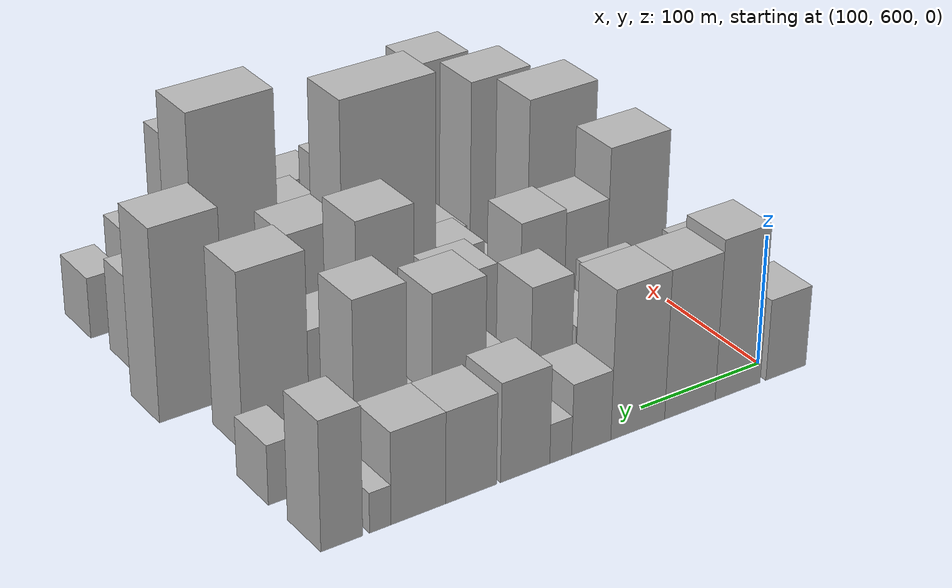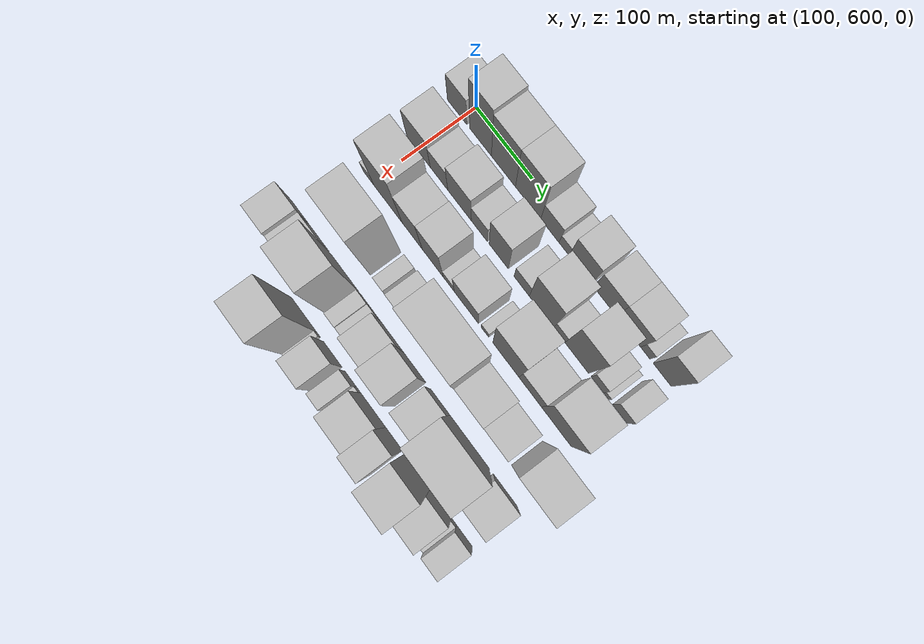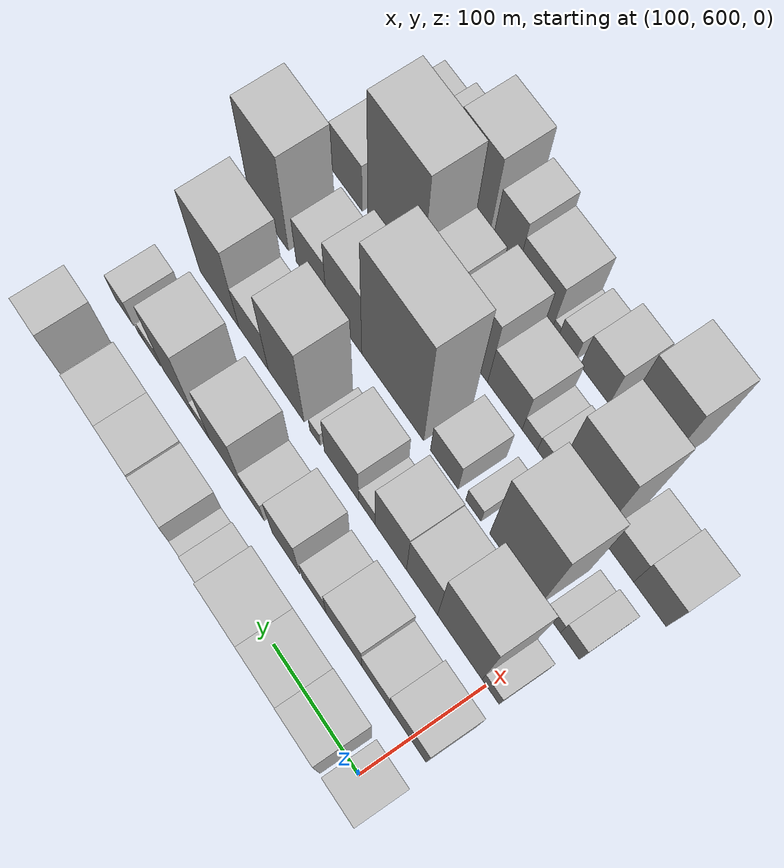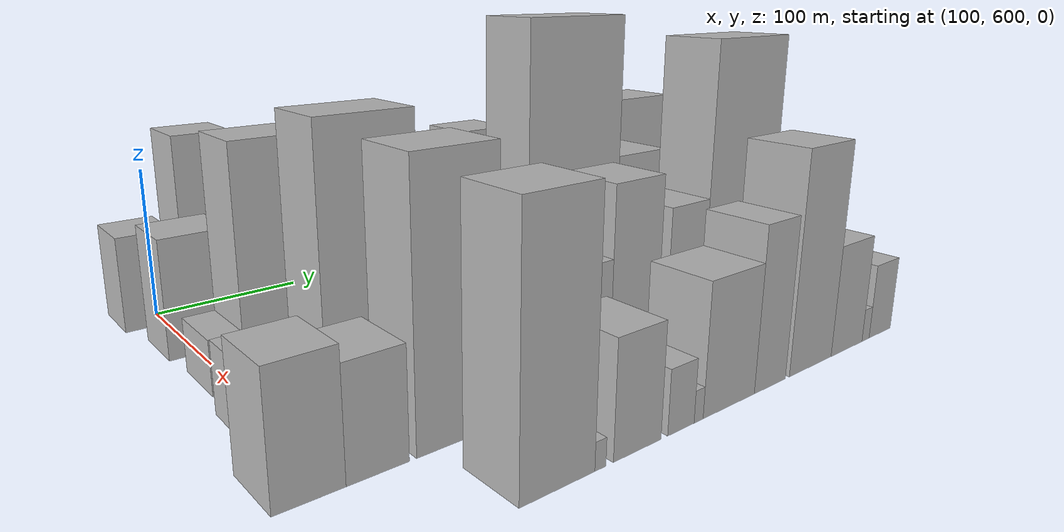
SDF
<sdf version="1.6">
 <world name="default">
  <model name="building_41">
   <static>1</static>
   <pose>100.0000 591.9832 0 0.000000 0.000000 0.000000</pose>
   <link name="link">
    <pose>0 0 31.50 0 0 0</pose>
    <collision name="collision"><geometry><box><size>40.0000 35.1292 63.0000</size></box></geometry></collision>
    <visual name="visual">
     <cast_shadows>0</cast_shadows>
     <geometry><box><size>40.0000 35.1292 63.0000</size></box></geometry>
     <material>
      <script>
       <uri>model://HANNAS_wall/materials/scripts</uri>
       <uri>model://HANNAS_wall/materials/textures</uri>
       <name>vrc/HANNAS_wall</name>
      </script>
     </material>
    </visual>
   </link>
  </model>
  <model name="building_42">
   <static>1</static>
   <pose>100.0000 634.0240 0 0.000000 0.000000 0.000000</pose>
   <link name="link">
    <pose>0 0 61.50 0 0 0</pose>
    <collision name="collision"><geometry><box><size>40.0000 38.9524 123.0000</size></box></geometry></collision>
    <visual name="visual">
     <cast_shadows>0</cast_shadows>
     <geometry><box><size>40.0000 38.9524 123.0000</size></box></geometry>
     <material>
      <script>
       <uri>model://HANNAS_wall/materials/scripts</uri>
       <uri>model://HANNAS_wall/materials/textures</uri>
       <name>vrc/HANNAS_wall</name>
      </script>
     </material>
    </visual>
   </link>
  </model>
  <model name="building_43">
   <static>1</static>
   <pose>100.0000 674.8013 0 0.000000 0.000000 0.000000</pose>
   <link name="link">
    <pose>0 0 57.00 0 0 0</pose>
    <collision name="collision"><geometry><box><size>40.0000 42.6022 114.0000</size></box></geometry></collision>
    <visual name="visual">
     <cast_shadows>0</cast_shadows>
     <geometry><box><size>40.0000 42.6022 114.0000</size></box></geometry>
     <material>
      <script>
       <uri>model://HANNAS_wall/materials/scripts</uri>
       <uri>model://HANNAS_wall/materials/textures</uri>
       <name>vrc/HANNAS_wall</name>
      </script>
     </material>
    </visual>
   </link>
  </model>
  <model name="building_44">
   <static>1</static>
   <pose>100.0000 718.3085 0 0.000000 0.000000 0.000000</pose>
   <link name="link">
    <pose>0 0 57.00 0 0 0</pose>
    <collision name="collision"><geometry><box><size>40.0000 44.4120 114.0000</size></box></geometry></collision>
    <visual name="visual">
     <cast_shadows>0</cast_shadows>
     <geometry><box><size>40.0000 44.4120 114.0000</size></box></geometry>
     <material>
      <script>
       <uri>model://HANNAS_wall/materials/scripts</uri>
       <uri>model://HANNAS_wall/materials/textures</uri>
       <name>vrc/HANNAS_wall</name>
      </script>
     </material>
    </visual>
   </link>
  </model>
  <model name="building_45">
   <static>1</static>
   <pose>100.0000 756.2886 0 0.000000 0.000000 0.000000</pose>
   <link name="link">
    <pose>0 0 27.00 0 0 0</pose>
    <collision name="collision"><geometry><box><size>40.0000 31.5482 54.0000</size></box></geometry></collision>
    <visual name="visual">
     <cast_shadows>0</cast_shadows>
     <geometry><box><size>40.0000 31.5482 54.0000</size></box></geometry>
     <material>
      <script>
       <uri>model://HANNAS_wall/materials/scripts</uri>
       <uri>model://HANNAS_wall/materials/textures</uri>
       <name>vrc/HANNAS_wall</name>
      </script>
     </material>
    </visual>
   </link>
  </model>
  <model name="building_46">
   <static>1</static>
   <pose>100.0000 780.7602 0 0.000000 0.000000 0.000000</pose>
   <link name="link">
    <pose>0 0 15.00 0 0 0</pose>
    <collision name="collision"><geometry><box><size>40.0000 17.3951 30.0000</size></box></geometry></collision>
    <visual name="visual">
     <cast_shadows>0</cast_shadows>
     <geometry><box><size>40.0000 17.3951 30.0000</size></box></geometry>
     <material>
      <script>
       <uri>model://HANNAS_wall/materials/scripts</uri>
       <uri>model://HANNAS_wall/materials/textures</uri>
       <name>vrc/HANNAS_wall</name>
      </script>
     </material>
    </visual>
   </link>
  </model>
  <model name="building_47">
   <static>1</static>
   <pose>100.0000 808.7402 0 0.000000 0.000000 0.000000</pose>
   <link name="link">
    <pose>0 0 37.50 0 0 0</pose>
    <collision name="collision"><geometry><box><size>40.0000 38.5649 75.0000</size></box></geometry></collision>
    <visual name="visual">
     <cast_shadows>0</cast_shadows>
     <geometry><box><size>40.0000 38.5649 75.0000</size></box></geometry>
     <material>
      <script>
       <uri>model://HANNAS_wall/materials/scripts</uri>
       <uri>model://HANNAS_wall/materials/textures</uri>
       <name>vrc/HANNAS_wall</name>
      </script>
     </material>
    </visual>
   </link>
  </model>
  <model name="building_48">
   <static>1</static>
   <pose>100.0000 850.4560 0 0.000000 0.000000 0.000000</pose>
   <link name="link">
    <pose>0 0 34.50 0 0 0</pose>
    <collision name="collision"><geometry><box><size>40.0000 38.8666 69.0000</size></box></geometry></collision>
    <visual name="visual">
     <cast_shadows>0</cast_shadows>
     <geometry><box><size>40.0000 38.8666 69.0000</size></box></geometry>
     <material>
      <script>
       <uri>model://HANNAS_wall/materials/scripts</uri>
       <uri>model://HANNAS_wall/materials/textures</uri>
       <name>vrc/HANNAS_wall</name>
      </script>
     </material>
    </visual>
   </link>
  </model>
  <model name="building_49">
   <static>1</static>
   <pose>100.0000 890.3059 0 0.000000 0.000000 0.000000</pose>
   <link name="link">
    <pose>0 0 34.50 0 0 0</pose>
    <collision name="collision"><geometry><box><size>40.0000 40.8333 69.0000</size></box></geometry></collision>
    <visual name="visual">
     <cast_shadows>0</cast_shadows>
     <geometry><box><size>40.0000 40.8333 69.0000</size></box></geometry>
     <material>
      <script>
       <uri>model://HANNAS_wall/materials/scripts</uri>
       <uri>model://HANNAS_wall/materials/textures</uri>
       <name>vrc/HANNAS_wall</name>
      </script>
     </material>
    </visual>
   </link>
  </model>
  <model name="building_50">
   <static>1</static>
   <pose>100.0000 918.5866 0 0.000000 0.000000 0.000000</pose>
   <link name="link">
    <pose>0 0 15.00 0 0 0</pose>
    <collision name="collision"><geometry><box><size>40.0000 15.7281 30.0000</size></box></geometry></collision>
    <visual name="visual">
     <cast_shadows>0</cast_shadows>
     <geometry><box><size>40.0000 15.7281 30.0000</size></box></geometry>
     <material>
      <script>
       <uri>model://HANNAS_wall/materials/scripts</uri>
       <uri>model://HANNAS_wall/materials/textures</uri>
       <name>vrc/HANNAS_wall</name>
      </script>
     </material>
    </visual>
   </link>
  </model>
  <model name="building_51">
   <static>1</static>
   <pose>100.0000 946.5398 0 0.000000 0.000000 0.000000</pose>
   <link name="link">
    <pose>0 0 48.00 0 0 0</pose>
    <collision name="collision"><geometry><box><size>40.0000 30.1782 96.0000</size></box></geometry></collision>
    <visual name="visual">
     <cast_shadows>0</cast_shadows>
     <geometry><box><size>40.0000 30.1782 96.0000</size></box></geometry>
     <material>
      <script>
       <uri>model://HANNAS_wall/materials/scripts</uri>
       <uri>model://HANNAS_wall/materials/textures</uri>
       <name>vrc/HANNAS_wall</name>
      </script>
     </material>
    </visual>
   </link>
  </model>
  <model name="building_91">
   <static>1</static>
   <pose>160.0000 603.2558 0 0.000000 0.000000 0.000000</pose>
   <link name="link">
    <pose>0 0 37.50 0 0 0</pose>
    <collision name="collision"><geometry><box><size>40.0000 42.1537 75.0000</size></box></geometry></collision>
    <visual name="visual">
     <cast_shadows>0</cast_shadows>
     <geometry><box><size>40.0000 42.1537 75.0000</size></box></geometry>
     <material>
      <script>
       <uri>model://HANNAS_wall/materials/scripts</uri>
       <uri>model://HANNAS_wall/materials/textures</uri>
       <name>vrc/HANNAS_wall</name>
      </script>
     </material>
    </visual>
   </link>
  </model>
  <model name="building_92">
   <static>1</static>
   <pose>160.0000 640.0746 0 0.000000 0.000000 0.000000</pose>
   <link name="link">
    <pose>0 0 28.50 0 0 0</pose>
    <collision name="collision"><geometry><box><size>40.0000 31.4838 57.0000</size></box></geometry></collision>
    <visual name="visual">
     <cast_shadows>0</cast_shadows>
     <geometry><box><size>40.0000 31.4838 57.0000</size></box></geometry>
     <material>
      <script>
       <uri>model://HANNAS_wall/materials/scripts</uri>
       <uri>model://HANNAS_wall/materials/textures</uri>
       <name>vrc/HANNAS_wall</name>
      </script>
     </material>
    </visual>
   </link>
  </model>
  <model name="building_93">
   <static>1</static>
   <pose>160.0000 676.7219 0 0.000000 0.000000 0.000000</pose>
   <link name="link">
    <pose>0 0 37.50 0 0 0</pose>
    <collision name="collision"><geometry><box><size>40.0000 41.8107 75.0000</size></box></geometry></collision>
    <visual name="visual">
     <cast_shadows>0</cast_shadows>
     <geometry><box><size>40.0000 41.8107 75.0000</size></box></geometry>
     <material>
      <script>
       <uri>model://HANNAS_wall/materials/scripts</uri>
       <uri>model://HANNAS_wall/materials/textures</uri>
       <name>vrc/HANNAS_wall</name>
      </script>
     </material>
    </visual>
   </link>
  </model>
  <model name="building_94">
   <static>1</static>
   <pose>160.0000 711.8376 0 0.000000 0.000000 0.000000</pose>
   <link name="link">
    <pose>0 0 25.50 0 0 0</pose>
    <collision name="collision"><geometry><box><size>40.0000 28.4207 51.0000</size></box></geometry></collision>
    <visual name="visual">
     <cast_shadows>0</cast_shadows>
     <geometry><box><size>40.0000 28.4207 51.0000</size></box></geometry>
     <material>
      <script>
       <uri>model://HANNAS_wall/materials/scripts</uri>
       <uri>model://HANNAS_wall/materials/textures</uri>
       <name>vrc/HANNAS_wall</name>
      </script>
     </material>
    </visual>
   </link>
  </model>
  <model name="building_95">
   <static>1</static>
   <pose>160.0000 745.7822 0 0.000000 0.000000 0.000000</pose>
   <link name="link">
    <pose>0 0 46.50 0 0 0</pose>
    <collision name="collision"><geometry><box><size>40.0000 33.4684 93.0000</size></box></geometry></collision>
    <visual name="visual">
     <cast_shadows>0</cast_shadows>
     <geometry><box><size>40.0000 33.4684 93.0000</size></box></geometry>
     <material>
      <script>
       <uri>model://HANNAS_wall/materials/scripts</uri>
       <uri>model://HANNAS_wall/materials/textures</uri>
       <name>vrc/HANNAS_wall</name>
      </script>
     </material>
    </visual>
   </link>
  </model>
  <model name="building_96">
   <static>1</static>
   <pose>160.0000 785.6526 0 0.000000 0.000000 0.000000</pose>
   <link name="link">
    <pose>0 0 22.50 0 0 0</pose>
    <collision name="collision"><geometry><box><size>40.0000 26.2726 45.0000</size></box></geometry></collision>
    <visual name="visual">
     <cast_shadows>0</cast_shadows>
     <geometry><box><size>40.0000 26.2726 45.0000</size></box></geometry>
     <material>
      <script>
       <uri>model://HANNAS_wall/materials/scripts</uri>
       <uri>model://HANNAS_wall/materials/textures</uri>
       <name>vrc/HANNAS_wall</name>
      </script>
     </material>
    </visual>
   </link>
  </model>
  <model name="building_97">
   <static>1</static>
   <pose>160.0000 819.6085 0 0.000000 0.000000 0.000000</pose>
   <link name="link">
    <pose>0 0 57.00 0 0 0</pose>
    <collision name="collision"><geometry><box><size>40.0000 41.6392 114.0000</size></box></geometry></collision>
    <visual name="visual">
     <cast_shadows>0</cast_shadows>
     <geometry><box><size>40.0000 41.6392 114.0000</size></box></geometry>
     <material>
      <script>
       <uri>model://HANNAS_wall/materials/scripts</uri>
       <uri>model://HANNAS_wall/materials/textures</uri>
       <name>vrc/HANNAS_wall</name>
      </script>
     </material>
    </visual>
   </link>
  </model>
  <model name="building_98">
   <static>1</static>
   <pose>160.0000 850.1388 0 0.000000 0.000000 0.000000</pose>
   <link name="link">
    <pose>0 0 18.00 0 0 0</pose>
    <collision name="collision"><geometry><box><size>40.0000 19.4213 36.0000</size></box></geometry></collision>
    <visual name="visual">
     <cast_shadows>0</cast_shadows>
     <geometry><box><size>40.0000 19.4213 36.0000</size></box></geometry>
     <material>
      <script>
       <uri>model://HANNAS_wall/materials/scripts</uri>
       <uri>model://HANNAS_wall/materials/textures</uri>
       <name>vrc/HANNAS_wall</name>
      </script>
     </material>
    </visual>
   </link>
  </model>
  <model name="building_99">
   <static>1</static>
   <pose>160.0000 879.8297 0 0.000000 0.000000 0.000000</pose>
   <link name="link">
    <pose>0 0 64.50 0 0 0</pose>
    <collision name="collision"><geometry><box><size>40.0000 39.9605 129.0000</size></box></geometry></collision>
    <visual name="visual">
     <cast_shadows>0</cast_shadows>
     <geometry><box><size>40.0000 39.9605 129.0000</size></box></geometry>
     <material>
      <script>
       <uri>model://HANNAS_wall/materials/scripts</uri>
       <uri>model://HANNAS_wall/materials/textures</uri>
       <name>vrc/HANNAS_wall</name>
      </script>
     </material>
    </visual>
   </link>
  </model>
  <model name="building_100">
   <static>1</static>
   <pose>160.0000 914.3203 0 0.000000 0.000000 0.000000</pose>
   <link name="link">
    <pose>0 0 19.50 0 0 0</pose>
    <collision name="collision"><geometry><box><size>40.0000 21.0207 39.0000</size></box></geometry></collision>
    <visual name="visual">
     <cast_shadows>0</cast_shadows>
     <geometry><box><size>40.0000 21.0207 39.0000</size></box></geometry>
     <material>
      <script>
       <uri>model://HANNAS_wall/materials/scripts</uri>
       <uri>model://HANNAS_wall/materials/textures</uri>
       <name>vrc/HANNAS_wall</name>
      </script>
     </material>
    </visual>
   </link>
  </model>
  <model name="building_101">
   <static>1</static>
   <pose>160.0000 929.2761 0 0.000000 0.000000 0.000000</pose>
   <link name="link">
    <pose>0 0 9.00 0 0 0</pose>
    <collision name="collision"><geometry><box><size>40.0000 8.8909 18.0000</size></box></geometry></collision>
    <visual name="visual">
     <cast_shadows>0</cast_shadows>
     <geometry><box><size>40.0000 8.8909 18.0000</size></box></geometry>
     <material>
      <script>
       <uri>model://HANNAS_wall/materials/scripts</uri>
       <uri>model://HANNAS_wall/materials/textures</uri>
       <name>vrc/HANNAS_wall</name>
      </script>
     </material>
    </visual>
   </link>
  </model>
  <model name="building_102">
   <static>1</static>
   <pose>160.0000 951.6958 0 0.000000 0.000000 0.000000</pose>
   <link name="link">
    <pose>0 0 22.50 0 0 0</pose>
    <collision name="collision"><geometry><box><size>40.0000 23.9487 45.0000</size></box></geometry></collision>
    <visual name="visual">
     <cast_shadows>0</cast_shadows>
     <geometry><box><size>40.0000 23.9487 45.0000</size></box></geometry>
     <material>
      <script>
       <uri>model://HANNAS_wall/materials/scripts</uri>
       <uri>model://HANNAS_wall/materials/textures</uri>
       <name>vrc/HANNAS_wall</name>
      </script>
     </material>
    </visual>
   </link>
  </model>
  <model name="building_145">
   <static>1</static>
   <pose>220.0000 595.2688 0 0.000000 0.000000 0.000000</pose>
   <link name="link">
    <pose>0 0 16.50 0 0 0</pose>
    <collision name="collision"><geometry><box><size>40.0000 19.0954 33.0000</size></box></geometry></collision>
    <visual name="visual">
     <cast_shadows>0</cast_shadows>
     <geometry><box><size>40.0000 19.0954 33.0000</size></box></geometry>
     <material>
      <script>
       <uri>model://HANNAS_wall/materials/scripts</uri>
       <uri>model://HANNAS_wall/materials/textures</uri>
       <name>vrc/HANNAS_wall</name>
      </script>
     </material>
    </visual>
   </link>
  </model>
  <model name="building_146">
   <static>1</static>
   <pose>220.0000 630.2907 0 0.000000 0.000000 0.000000</pose>
   <link name="link">
    <pose>0 0 69.00 0 0 0</pose>
    <collision name="collision"><geometry><box><size>40.0000 50.9485 138.0000</size></box></geometry></collision>
    <visual name="visual">
     <cast_shadows>0</cast_shadows>
     <geometry><box><size>40.0000 50.9485 138.0000</size></box></geometry>
     <material>
      <script>
       <uri>model://HANNAS_wall/materials/scripts</uri>
       <uri>model://HANNAS_wall/materials/textures</uri>
       <name>vrc/HANNAS_wall</name>
      </script>
     </material>
    </visual>
   </link>
  </model>
  <model name="building_147">
   <static>1</static>
   <pose>220.0000 673.7912 0 0.000000 0.000000 0.000000</pose>
   <link name="link">
    <pose>0 0 49.50 0 0 0</pose>
    <collision name="collision"><geometry><box><size>40.0000 36.0523 99.0000</size></box></geometry></collision>
    <visual name="visual">
     <cast_shadows>0</cast_shadows>
     <geometry><box><size>40.0000 36.0523 99.0000</size></box></geometry>
     <material>
      <script>
       <uri>model://HANNAS_wall/materials/scripts</uri>
       <uri>model://HANNAS_wall/materials/textures</uri>
       <name>vrc/HANNAS_wall</name>
      </script>
     </material>
    </visual>
   </link>
  </model>
  <model name="building_148">
   <static>1</static>
   <pose>220.0000 710.3709 0 0.000000 0.000000 0.000000</pose>
   <link name="link">
    <pose>0 0 51.00 0 0 0</pose>
    <collision name="collision"><geometry><box><size>40.0000 37.1071 102.0000</size></box></geometry></collision>
    <visual name="visual">
     <cast_shadows>0</cast_shadows>
     <geometry><box><size>40.0000 37.1071 102.0000</size></box></geometry>
     <material>
      <script>
       <uri>model://HANNAS_wall/materials/scripts</uri>
       <uri>model://HANNAS_wall/materials/textures</uri>
       <name>vrc/HANNAS_wall</name>
      </script>
     </material>
    </visual>
   </link>
  </model>
  <model name="building_149">
   <static>1</static>
   <pose>220.0000 738.5662 0 0.000000 0.000000 0.000000</pose>
   <link name="link">
    <pose>0 0 16.50 0 0 0</pose>
    <collision name="collision"><geometry><box><size>40.0000 19.2834 33.0000</size></box></geometry></collision>
    <visual name="visual">
     <cast_shadows>0</cast_shadows>
     <geometry><box><size>40.0000 19.2834 33.0000</size></box></geometry>
     <material>
      <script>
       <uri>model://HANNAS_wall/materials/scripts</uri>
       <uri>model://HANNAS_wall/materials/textures</uri>
       <name>vrc/HANNAS_wall</name>
      </script>
     </material>
    </visual>
   </link>
  </model>
  <model name="building_150">
   <static>1</static>
   <pose>220.0000 769.0709 0 0.000000 0.000000 0.000000</pose>
   <link name="link">
    <pose>0 0 39.00 0 0 0</pose>
    <collision name="collision"><geometry><box><size>40.0000 41.7261 78.0000</size></box></geometry></collision>
    <visual name="visual">
     <cast_shadows>0</cast_shadows>
     <geometry><box><size>40.0000 41.7261 78.0000</size></box></geometry>
     <material>
      <script>
       <uri>model://HANNAS_wall/materials/scripts</uri>
       <uri>model://HANNAS_wall/materials/textures</uri>
       <name>vrc/HANNAS_wall</name>
      </script>
     </material>
    </visual>
   </link>
  </model>
  <model name="building_151">
   <static>1</static>
   <pose>220.0000 801.4206 0 0.000000 0.000000 0.000000</pose>
   <link name="link">
    <pose>0 0 13.50 0 0 0</pose>
    <collision name="collision"><geometry><box><size>40.0000 12.9732 27.0000</size></box></geometry></collision>
    <visual name="visual">
     <cast_shadows>0</cast_shadows>
     <geometry><box><size>40.0000 12.9732 27.0000</size></box></geometry>
     <material>
      <script>
       <uri>model://HANNAS_wall/materials/scripts</uri>
       <uri>model://HANNAS_wall/materials/textures</uri>
       <name>vrc/HANNAS_wall</name>
      </script>
     </material>
    </visual>
   </link>
  </model>
  <model name="building_152">
   <static>1</static>
   <pose>220.0000 837.3312 0 0.000000 0.000000 0.000000</pose>
   <link name="link">
    <pose>0 0 72.00 0 0 0</pose>
    <collision name="collision"><geometry><box><size>40.0000 44.8480 144.0000</size></box></geometry></collision>
    <visual name="visual">
     <cast_shadows>0</cast_shadows>
     <geometry><box><size>40.0000 44.8480 144.0000</size></box></geometry>
     <material>
      <script>
       <uri>model://HANNAS_wall/materials/scripts</uri>
       <uri>model://HANNAS_wall/materials/textures</uri>
       <name>vrc/HANNAS_wall</name>
      </script>
     </material>
    </visual>
   </link>
  </model>
  <model name="building_153">
   <static>1</static>
   <pose>220.0000 878.5077 0 0.000000 0.000000 0.000000</pose>
   <link name="link">
    <pose>0 0 37.50 0 0 0</pose>
    <collision name="collision"><geometry><box><size>40.0000 37.5050 75.0000</size></box></geometry></collision>
    <visual name="visual">
     <cast_shadows>0</cast_shadows>
     <geometry><box><size>40.0000 37.5050 75.0000</size></box></geometry>
     <material>
      <script>
       <uri>model://HANNAS_wall/materials/scripts</uri>
       <uri>model://HANNAS_wall/materials/textures</uri>
       <name>vrc/HANNAS_wall</name>
      </script>
     </material>
    </visual>
   </link>
  </model>
  <model name="building_154">
   <static>1</static>
   <pose>220.0000 922.4303 0 0.000000 0.000000 0.000000</pose>
   <link name="link">
    <pose>0 0 67.50 0 0 0</pose>
    <collision name="collision"><geometry><box><size>40.0000 50.3403 135.0000</size></box></geometry></collision>
    <visual name="visual">
     <cast_shadows>0</cast_shadows>
     <geometry><box><size>40.0000 50.3403 135.0000</size></box></geometry>
     <material>
      <script>
       <uri>model://HANNAS_wall/materials/scripts</uri>
       <uri>model://HANNAS_wall/materials/textures</uri>
       <name>vrc/HANNAS_wall</name>
      </script>
     </material>
    </visual>
   </link>
  </model>
  <model name="building_197">
   <static>1</static>
   <pose>280.0000 590.2102 0 0.000000 0.000000 0.000000</pose>
   <link name="link">
    <pose>0 0 21.00 0 0 0</pose>
    <collision name="collision"><geometry><box><size>40.0000 21.0243 42.0000</size></box></geometry></collision>
    <visual name="visual">
     <cast_shadows>0</cast_shadows>
     <geometry><box><size>40.0000 21.0243 42.0000</size></box></geometry>
     <material>
      <script>
       <uri>model://HANNAS_wall/materials/scripts</uri>
       <uri>model://HANNAS_wall/materials/textures</uri>
       <name>vrc/HANNAS_wall</name>
      </script>
     </material>
    </visual>
   </link>
  </model>
  <model name="building_198">
   <static>1</static>
   <pose>280.0000 609.4814 0 0.000000 0.000000 0.000000</pose>
   <link name="link">
    <pose>0 0 15.00 0 0 0</pose>
    <collision name="collision"><geometry><box><size>40.0000 17.5181 30.0000</size></box></geometry></collision>
    <visual name="visual">
     <cast_shadows>0</cast_shadows>
     <geometry><box><size>40.0000 17.5181 30.0000</size></box></geometry>
     <material>
      <script>
       <uri>model://HANNAS_wall/materials/scripts</uri>
       <uri>model://HANNAS_wall/materials/textures</uri>
       <name>vrc/HANNAS_wall</name>
      </script>
     </material>
    </visual>
   </link>
  </model>
  <model name="building_199">
   <static>1</static>
   <pose>280.0000 652.0195 0 0.000000 0.000000 0.000000</pose>
   <link name="link">
    <pose>0 0 78.00 0 0 0</pose>
    <collision name="collision"><geometry><box><size>40.0000 57.5581 156.0000</size></box></geometry></collision>
    <visual name="visual">
     <cast_shadows>0</cast_shadows>
     <geometry><box><size>40.0000 57.5581 156.0000</size></box></geometry>
     <material>
      <script>
       <uri>model://HANNAS_wall/materials/scripts</uri>
       <uri>model://HANNAS_wall/materials/textures</uri>
       <name>vrc/HANNAS_wall</name>
      </script>
     </material>
    </visual>
   </link>
  </model>
  <model name="building_200">
   <static>1</static>
   <pose>280.0000 699.6386 0 0.000000 0.000000 0.000000</pose>
   <link name="link">
    <pose>0 0 15.00 0 0 0</pose>
    <collision name="collision"><geometry><box><size>40.0000 17.6802 30.0000</size></box></geometry></collision>
    <visual name="visual">
     <cast_shadows>0</cast_shadows>
     <geometry><box><size>40.0000 17.6802 30.0000</size></box></geometry>
     <material>
      <script>
       <uri>model://HANNAS_wall/materials/scripts</uri>
       <uri>model://HANNAS_wall/materials/textures</uri>
       <name>vrc/HANNAS_wall</name>
      </script>
     </material>
    </visual>
   </link>
  </model>
  <model name="building_201">
   <static>1</static>
   <pose>280.0000 733.8752 0 0.000000 0.000000 0.000000</pose>
   <link name="link">
    <pose>0 0 28.50 0 0 0</pose>
    <collision name="collision"><geometry><box><size>40.0000 32.7930 57.0000</size></box></geometry></collision>
    <visual name="visual">
     <cast_shadows>0</cast_shadows>
     <geometry><box><size>40.0000 32.7930 57.0000</size></box></geometry>
     <material>
      <script>
       <uri>model://HANNAS_wall/materials/scripts</uri>
       <uri>model://HANNAS_wall/materials/textures</uri>
       <name>vrc/HANNAS_wall</name>
      </script>
     </material>
    </visual>
   </link>
  </model>
  <model name="building_202">
   <static>1</static>
   <pose>280.0000 795.8989 0 0.000000 0.000000 0.000000</pose>
   <link name="link">
    <pose>0 0 99.00 0 0 0</pose>
    <collision name="collision"><geometry><box><size>40.0000 75.2545 198.0000</size></box></geometry></collision>
    <visual name="visual">
     <cast_shadows>0</cast_shadows>
     <geometry><box><size>40.0000 75.2545 198.0000</size></box></geometry>
     <material>
      <script>
       <uri>model://HANNAS_wall/materials/scripts</uri>
       <uri>model://HANNAS_wall/materials/textures</uri>
       <name>vrc/HANNAS_wall</name>
      </script>
     </material>
    </visual>
   </link>
  </model>
  <model name="building_203">
   <static>1</static>
   <pose>280.0000 855.3491 0 0.000000 0.000000 0.000000</pose>
   <link name="link">
    <pose>0 0 55.50 0 0 0</pose>
    <collision name="collision"><geometry><box><size>40.0000 43.6458 111.0000</size></box></geometry></collision>
    <visual name="visual">
     <cast_shadows>0</cast_shadows>
     <geometry><box><size>40.0000 43.6458 111.0000</size></box></geometry>
     <material>
      <script>
       <uri>model://HANNAS_wall/materials/scripts</uri>
       <uri>model://HANNAS_wall/materials/textures</uri>
       <name>vrc/HANNAS_wall</name>
      </script>
     </material>
    </visual>
   </link>
  </model>
  <model name="building_204">
   <static>1</static>
   <pose>280.0000 896.5516 0 0.000000 0.000000 0.000000</pose>
   <link name="link">
    <pose>0 0 37.50 0 0 0</pose>
    <collision name="collision"><geometry><box><size>40.0000 38.7591 75.0000</size></box></geometry></collision>
    <visual name="visual">
     <cast_shadows>0</cast_shadows>
     <geometry><box><size>40.0000 38.7591 75.0000</size></box></geometry>
     <material>
      <script>
       <uri>model://HANNAS_wall/materials/scripts</uri>
       <uri>model://HANNAS_wall/materials/textures</uri>
       <name>vrc/HANNAS_wall</name>
      </script>
     </material>
    </visual>
   </link>
  </model>
  <model name="building_205">
   <static>1</static>
   <pose>280.0000 951.2183 0 0.000000 0.000000 0.000000</pose>
   <link name="link">
    <pose>0 0 73.50 0 0 0</pose>
    <collision name="collision"><geometry><box><size>40.0000 50.5744 147.0000</size></box></geometry></collision>
    <visual name="visual">
     <cast_shadows>0</cast_shadows>
     <geometry><box><size>40.0000 50.5744 147.0000</size></box></geometry>
     <material>
      <script>
       <uri>model://HANNAS_wall/materials/scripts</uri>
       <uri>model://HANNAS_wall/materials/textures</uri>
       <name>vrc/HANNAS_wall</name>
      </script>
     </material>
    </visual>
   </link>
  </model>
  <model name="building_246">
   <static>1</static>
   <pose>340.0000 582.7761 0 0.000000 0.000000 0.000000</pose>
   <link name="link">
    <pose>0 0 34.50 0 0 0</pose>
    <collision name="collision"><geometry><box><size>40.0000 35.6574 69.0000</size></box></geometry></collision>
    <visual name="visual">
     <cast_shadows>0</cast_shadows>
     <geometry><box><size>40.0000 35.6574 69.0000</size></box></geometry>
     <material>
      <script>
       <uri>model://HANNAS_wall/materials/scripts</uri>
       <uri>model://HANNAS_wall/materials/textures</uri>
       <name>vrc/HANNAS_wall</name>
      </script>
     </material>
    </visual>
   </link>
  </model>
  <model name="building_247">
   <static>1</static>
   <pose>340.0000 617.3367 0 0.000000 0.000000 0.000000</pose>
   <link name="link">
    <pose>0 0 30.00 0 0 0</pose>
    <collision name="collision"><geometry><box><size>40.0000 33.4638 60.0000</size></box></geometry></collision>
    <visual name="visual">
     <cast_shadows>0</cast_shadows>
     <geometry><box><size>40.0000 33.4638 60.0000</size></box></geometry>
     <material>
      <script>
       <uri>model://HANNAS_wall/materials/scripts</uri>
       <uri>model://HANNAS_wall/materials/textures</uri>
       <name>vrc/HANNAS_wall</name>
      </script>
     </material>
    </visual>
   </link>
  </model>
  <model name="building_248">
   <static>1</static>
   <pose>340.0000 663.2795 0 0.000000 0.000000 0.000000</pose>
   <link name="link">
    <pose>0 0 73.50 0 0 0</pose>
    <collision name="collision"><geometry><box><size>40.0000 50.4217 147.0000</size></box></geometry></collision>
    <visual name="visual">
     <cast_shadows>0</cast_shadows>
     <geometry><box><size>40.0000 50.4217 147.0000</size></box></geometry>
     <material>
      <script>
       <uri>model://HANNAS_wall/materials/scripts</uri>
       <uri>model://HANNAS_wall/materials/textures</uri>
       <name>vrc/HANNAS_wall</name>
      </script>
     </material>
    </visual>
   </link>
  </model>
  <model name="building_249">
   <static>1</static>
   <pose>340.0000 700.4586 0 0.000000 0.000000 0.000000</pose>
   <link name="link">
    <pose>0 0 16.50 0 0 0</pose>
    <collision name="collision"><geometry><box><size>40.0000 17.9365 33.0000</size></box></geometry></collision>
    <visual name="visual">
     <cast_shadows>0</cast_shadows>
     <geometry><box><size>40.0000 17.9365 33.0000</size></box></geometry>
     <material>
      <script>
       <uri>model://HANNAS_wall/materials/scripts</uri>
       <uri>model://HANNAS_wall/materials/textures</uri>
       <name>vrc/HANNAS_wall</name>
      </script>
     </material>
    </visual>
   </link>
  </model>
  <model name="building_250">
   <static>1</static>
   <pose>340.0000 718.2357 0 0.000000 0.000000 0.000000</pose>
   <link name="link">
    <pose>0 0 15.00 0 0 0</pose>
    <collision name="collision"><geometry><box><size>40.0000 17.6178 30.0000</size></box></geometry></collision>
    <visual name="visual">
     <cast_shadows>0</cast_shadows>
     <geometry><box><size>40.0000 17.6178 30.0000</size></box></geometry>
     <material>
      <script>
       <uri>model://HANNAS_wall/materials/scripts</uri>
       <uri>model://HANNAS_wall/materials/textures</uri>
       <name>vrc/HANNAS_wall</name>
      </script>
     </material>
    </visual>
   </link>
  </model>
  <model name="building_251">
   <static>1</static>
   <pose>340.0000 747.3426 0 0.000000 0.000000 0.000000</pose>
   <link name="link">
    <pose>0 0 36.00 0 0 0</pose>
    <collision name="collision"><geometry><box><size>40.0000 40.5959 72.0000</size></box></geometry></collision>
    <visual name="visual">
     <cast_shadows>0</cast_shadows>
     <geometry><box><size>40.0000 40.5959 72.0000</size></box></geometry>
     <material>
      <script>
       <uri>model://HANNAS_wall/materials/scripts</uri>
       <uri>model://HANNAS_wall/materials/textures</uri>
       <name>vrc/HANNAS_wall</name>
      </script>
     </material>
    </visual>
   </link>
  </model>
  <model name="building_252">
   <static>1</static>
   <pose>340.0000 787.1878 0 0.000000 0.000000 0.000000</pose>
   <link name="link">
    <pose>0 0 57.00 0 0 0</pose>
    <collision name="collision"><geometry><box><size>40.0000 39.0945 114.0000</size></box></geometry></collision>
    <visual name="visual">
     <cast_shadows>0</cast_shadows>
     <geometry><box><size>40.0000 39.0945 114.0000</size></box></geometry>
     <material>
      <script>
       <uri>model://HANNAS_wall/materials/scripts</uri>
       <uri>model://HANNAS_wall/materials/textures</uri>
       <name>vrc/HANNAS_wall</name>
      </script>
     </material>
    </visual>
   </link>
  </model>
  <model name="building_253">
   <static>1</static>
   <pose>340.0000 831.4174 0 0.000000 0.000000 0.000000</pose>
   <link name="link">
    <pose>0 0 46.50 0 0 0</pose>
    <collision name="collision"><geometry><box><size>40.0000 33.3647 93.0000</size></box></geometry></collision>
    <visual name="visual">
     <cast_shadows>0</cast_shadows>
     <geometry><box><size>40.0000 33.3647 93.0000</size></box></geometry>
     <material>
      <script>
       <uri>model://HANNAS_wall/materials/scripts</uri>
       <uri>model://HANNAS_wall/materials/textures</uri>
       <name>vrc/HANNAS_wall</name>
      </script>
     </material>
    </visual>
   </link>
  </model>
  <model name="building_254">
   <static>1</static>
   <pose>340.0000 881.4061 0 0.000000 0.000000 0.000000</pose>
   <link name="link">
    <pose>0 0 93.00 0 0 0</pose>
    <collision name="collision"><geometry><box><size>40.0000 66.6127 186.0000</size></box></geometry></collision>
    <visual name="visual">
     <cast_shadows>0</cast_shadows>
     <geometry><box><size>40.0000 66.6127 186.0000</size></box></geometry>
     <material>
      <script>
       <uri>model://HANNAS_wall/materials/scripts</uri>
       <uri>model://HANNAS_wall/materials/textures</uri>
       <name>vrc/HANNAS_wall</name>
      </script>
     </material>
    </visual>
   </link>
  </model>
  <model name="building_255">
   <static>1</static>
   <pose>340.0000 941.5353 0 0.000000 0.000000 0.000000</pose>
   <link name="link">
    <pose>0 0 36.00 0 0 0</pose>
    <collision name="collision"><geometry><box><size>40.0000 39.6457 72.0000</size></box></geometry></collision>
    <visual name="visual">
     <cast_shadows>0</cast_shadows>
     <geometry><box><size>40.0000 39.6457 72.0000</size></box></geometry>
     <material>
      <script>
       <uri>model://HANNAS_wall/materials/scripts</uri>
       <uri>model://HANNAS_wall/materials/textures</uri>
       <name>vrc/HANNAS_wall</name>
      </script>
     </material>
    </visual>
   </link>
  </model>
  <model name="building_301">
   <static>1</static>
   <pose>400.0000 673.3168 0 0.000000 0.000000 0.000000</pose>
   <link name="link">
    <pose>0 0 69.00 0 0 0</pose>
    <collision name="collision"><geometry><box><size>40.0000 45.5202 138.0000</size></box></geometry></collision>
    <visual name="visual">
     <cast_shadows>0</cast_shadows>
     <geometry><box><size>40.0000 45.5202 138.0000</size></box></geometry>
     <material>
      <script>
       <uri>model://HANNAS_wall/materials/scripts</uri>
       <uri>model://HANNAS_wall/materials/textures</uri>
       <name>vrc/HANNAS_wall</name>
      </script>
     </material>
    </visual>
   </link>
  </model>
  <model name="building_302">
   <static>1</static>
   <pose>400.0000 699.6723 0 0.000000 0.000000 0.000000</pose>
   <link name="link">
    <pose>0 0 7.50 0 0 0</pose>
    <collision name="collision"><geometry><box><size>40.0000 7.1908 15.0000</size></box></geometry></collision>
    <visual name="visual">
     <cast_shadows>0</cast_shadows>
     <geometry><box><size>40.0000 7.1908 15.0000</size></box></geometry>
     <material>
      <script>
       <uri>model://HANNAS_wall/materials/scripts</uri>
       <uri>model://HANNAS_wall/materials/textures</uri>
       <name>vrc/HANNAS_wall</name>
      </script>
     </material>
    </visual>
   </link>
  </model>
  <model name="building_303">
   <static>1</static>
   <pose>400.0000 725.0157 0 0.000000 0.000000 0.000000</pose>
   <link name="link">
    <pose>0 0 31.50 0 0 0</pose>
    <collision name="collision"><geometry><box><size>40.0000 33.4961 63.0000</size></box></geometry></collision>
    <visual name="visual">
     <cast_shadows>0</cast_shadows>
     <geometry><box><size>40.0000 33.4961 63.0000</size></box></geometry>
     <material>
      <script>
       <uri>model://HANNAS_wall/materials/scripts</uri>
       <uri>model://HANNAS_wall/materials/textures</uri>
       <name>vrc/HANNAS_wall</name>
      </script>
     </material>
    </visual>
   </link>
  </model>
  <model name="building_304">
   <static>1</static>
   <pose>400.0000 756.9504 0 0.000000 0.000000 0.000000</pose>
   <link name="link">
    <pose>0 0 18.00 0 0 0</pose>
    <collision name="collision"><geometry><box><size>40.0000 20.3733 36.0000</size></box></geometry></collision>
    <visual name="visual">
     <cast_shadows>0</cast_shadows>
     <geometry><box><size>40.0000 20.3733 36.0000</size></box></geometry>
     <material>
      <script>
       <uri>model://HANNAS_wall/materials/scripts</uri>
       <uri>model://HANNAS_wall/materials/textures</uri>
       <name>vrc/HANNAS_wall</name>
      </script>
     </material>
    </visual>
   </link>
  </model>
  <model name="building_305">
   <static>1</static>
   <pose>400.0000 770.7601 0 0.000000 0.000000 0.000000</pose>
   <link name="link">
    <pose>0 0 9.00 0 0 0</pose>
    <collision name="collision"><geometry><box><size>40.0000 7.2460 18.0000</size></box></geometry></collision>
    <visual name="visual">
     <cast_shadows>0</cast_shadows>
     <geometry><box><size>40.0000 7.2460 18.0000</size></box></geometry>
     <material>
      <script>
       <uri>model://HANNAS_wall/materials/scripts</uri>
       <uri>model://HANNAS_wall/materials/textures</uri>
       <name>vrc/HANNAS_wall</name>
      </script>
     </material>
    </visual>
   </link>
  </model>
  <model name="building_306">
   <static>1</static>
   <pose>400.0000 796.4159 0 0.000000 0.000000 0.000000</pose>
   <link name="link">
    <pose>0 0 37.50 0 0 0</pose>
    <collision name="collision"><geometry><box><size>40.0000 44.0655 75.0000</size></box></geometry></collision>
    <visual name="visual">
     <cast_shadows>0</cast_shadows>
     <geometry><box><size>40.0000 44.0655 75.0000</size></box></geometry>
     <material>
      <script>
       <uri>model://HANNAS_wall/materials/scripts</uri>
       <uri>model://HANNAS_wall/materials/textures</uri>
       <name>vrc/HANNAS_wall</name>
      </script>
     </material>
    </visual>
   </link>
  </model>
  <model name="building_307">
   <static>1</static>
   <pose>400.0000 833.1093 0 0.000000 0.000000 0.000000</pose>
   <link name="link">
    <pose>0 0 48.00 0 0 0</pose>
    <collision name="collision"><geometry><box><size>40.0000 29.3214 96.0000</size></box></geometry></collision>
    <visual name="visual">
     <cast_shadows>0</cast_shadows>
     <geometry><box><size>40.0000 29.3214 96.0000</size></box></geometry>
     <material>
      <script>
       <uri>model://HANNAS_wall/materials/scripts</uri>
       <uri>model://HANNAS_wall/materials/textures</uri>
       <name>vrc/HANNAS_wall</name>
      </script>
     </material>
    </visual>
   </link>
  </model>
  <model name="building_308">
   <static>1</static>
   <pose>400.0000 873.6013 0 0.000000 0.000000 0.000000</pose>
   <link name="link">
    <pose>0 0 66.00 0 0 0</pose>
    <collision name="collision"><geometry><box><size>40.0000 43.6626 132.0000</size></box></geometry></collision>
    <visual name="visual">
     <cast_shadows>0</cast_shadows>
     <geometry><box><size>40.0000 43.6626 132.0000</size></box></geometry>
     <material>
      <script>
       <uri>model://HANNAS_wall/materials/scripts</uri>
       <uri>model://HANNAS_wall/materials/textures</uri>
       <name>vrc/HANNAS_wall</name>
      </script>
     </material>
    </visual>
   </link>
  </model>
  <model name="building_309">
   <static>1</static>
   <pose>400.0000 913.1802 0 0.000000 0.000000 0.000000</pose>
   <link name="link">
    <pose>0 0 34.50 0 0 0</pose>
    <collision name="collision"><geometry><box><size>40.0000 35.4952 69.0000</size></box></geometry></collision>
    <visual name="visual">
     <cast_shadows>0</cast_shadows>
     <geometry><box><size>40.0000 35.4952 69.0000</size></box></geometry>
     <material>
      <script>
       <uri>model://HANNAS_wall/materials/scripts</uri>
       <uri>model://HANNAS_wall/materials/textures</uri>
       <name>vrc/HANNAS_wall</name>
      </script>
     </material>
    </visual>
   </link>
  </model>
  <model name="building_310">
   <static>1</static>
   <pose>400.0000 935.2095 0 0.000000 0.000000 0.000000</pose>
   <link name="link">
    <pose>0 0 10.50 0 0 0</pose>
    <collision name="collision"><geometry><box><size>40.0000 8.5634 21.0000</size></box></geometry></collision>
    <visual name="visual">
     <cast_shadows>0</cast_shadows>
     <geometry><box><size>40.0000 8.5634 21.0000</size></box></geometry>
     <material>
      <script>
       <uri>model://HANNAS_wall/materials/scripts</uri>
       <uri>model://HANNAS_wall/materials/textures</uri>
       <name>vrc/HANNAS_wall</name>
      </script>
     </material>
    </visual>
   </link>
  </model>
  <model name="building_311">
   <static>1</static>
   <pose>400.0000 952.7425 0 0.000000 0.000000 0.000000</pose>
   <link name="link">
    <pose>0 0 24.00 0 0 0</pose>
    <collision name="collision"><geometry><box><size>40.0000 26.5025 48.0000</size></box></geometry></collision>
    <visual name="visual">
     <cast_shadows>0</cast_shadows>
     <geometry><box><size>40.0000 26.5025 48.0000</size></box></geometry>
     <material>
      <script>
       <uri>model://HANNAS_wall/materials/scripts</uri>
       <uri>model://HANNAS_wall/materials/textures</uri>
       <name>vrc/HANNAS_wall</name>
      </script>
     </material>
    </visual>
   </link>
  </model>
 </world>
</sdf>
